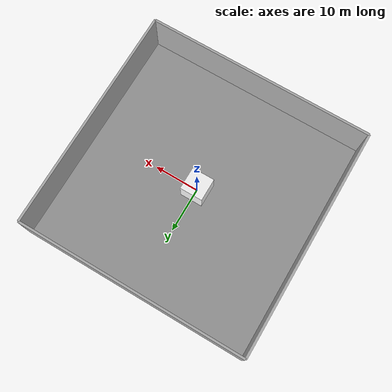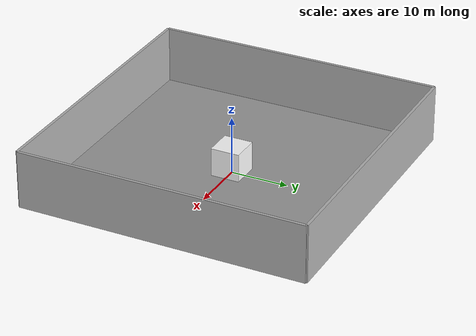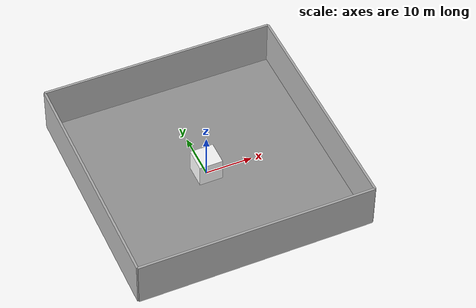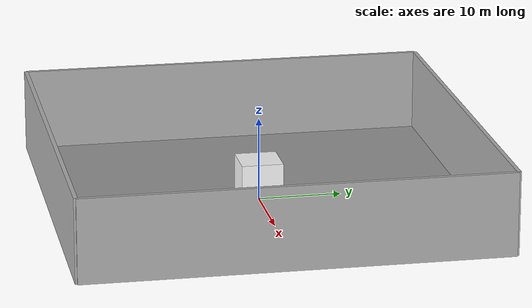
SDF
<?xml version="1.0" ?>
<sdf version="1.6">
  <world name="large_square_room">
    <physics type="ode">
      <gravity>0.000000 0.000000 -9.810000</gravity>
      <ode>
        <solver>
          <type>quick</type>
          <iters>20</iters>
          <sor>1.000000</sor>
        </solver>
        <constraints>
          <cfm>0.000000</cfm>
          <erp>0.200000</erp>
          <contact_max_correcting_vel>100.000000</contact_max_correcting_vel>
          <contact_surface_layer>0.000000</contact_surface_layer>
        </constraints>
      </ode>
      <real_time_update_rate>1000.000000</real_time_update_rate>
      <max_step_size>0.001000</max_step_size>
      <real_time_factor>1.000000</real_time_factor>
      <max_contacts>20</max_contacts>
    </physics>
    <plugin name="gz::sim::systems::Physics" filename="gz-sim-physics-system" />
    <plugin name="gz::sim::systems::UserCommands" filename="gz-sim-user-commands-system" />
    <plugin name="gz::sim::systems::SceneBroadcaster" filename="gz-sim-scene-broadcaster-system" />
    <plugin name="gz::sim::systems::Contact" filename="gz-sim-contact-system" />
    <plugin name="gz::sim::systems::Imu" filename="gz-sim-imu-system" />
    <plugin name="gz::sim::systems::AirPressure" filename="gz-sim-air-pressure-system" />
    <plugin name="gz::sim::systems::AirSpeed" filename="gz-sim-air-speed-system" />
    <plugin name="gz::sim::systems::ApplyLinkWrench" filename="gz-sim-apply-link-wrench-system" />
    <plugin name="gz::sim::systems::NavSat" filename="gz-sim-navsat-system" />
    <plugin name="gz::sim::systems::Sensors" filename="gz-sim-sensors-system" />

    <spherical_coordinates>
      <surface_model>EARTH_WGS84</surface_model>
      <world_frame_orientation>ENU</world_frame_orientation>
      <latitude_deg>46.06712712661159</latitude_deg>
      <longitude_deg> 11.149827878411065</longitude_deg>
      <elevation>0</elevation>
    </spherical_coordinates>

    <scene>
      <ambient>0.4 0.4 0.4 1</ambient>
      <background>0.1 0.1 0.1 1</background>
      <grid>false</grid>
      <origin_visual>false</origin_visual>
    </scene>

    <light name="sun" type="directional">
      <cast_shadows>1</cast_shadows>
      <pose>0.000000 0.000000 10.000000 0.000000 0.000000 0.000000</pose>
      <diffuse>0.800000 0.800000 0.800000 1.000000</diffuse>
      <specular>0.200000 0.200000 0.200000 1.000000</specular>
      <attenuation>
        <range>1000.000000</range>
        <constant>0.900000</constant>
        <linear>0.010000</linear>
        <quadratic>0.001000</quadratic>
      </attenuation>
      <visualize>false</visualize>
      <direction>0.500000 0.100000 -0.900000</direction>
    </light>

    <!-- Room: 50m x 50m floor, 10m high untextured walls -->
    <model name="room">
      <static>true</static>

      <!-- Floor -->
      <link name="floor">
        <pose>0 0 0 0 0 0</pose>
        <collision name="floor_collision">
          <geometry><box><size>50 50 0.1</size></box></geometry>
        </collision>
        <visual name="floor_visual">
          <geometry><box><size>50 50 0.1</size></box></geometry>
          <material>
            <!-- untextured gray -->
            <ambient>0.6 0.6 0.6 1</ambient>
            <diffuse>0.6 0.6 0.6 1</diffuse>
            <specular>0 0 0 1</specular>
            <emissive>0 0 0 1</emissive>
          </material>
        </visual>
      </link>

      <!-- North wall -->
      <link name="wall_north">
        <pose>0 25 5 0 0 0</pose>
        <collision name="col">
          <geometry><box><size>50 0.5 10</size></box></geometry>
        </collision>
        <visual name="vis">
          <geometry><box><size>50 0.5 10</size></box></geometry>
          <material>
            <ambient>0.7 0.7 0.7 1</ambient>
            <diffuse>0.7 0.7 0.7 1</diffuse>
            <specular>0 0 0 1</specular>
            <emissive>0 0 0 1</emissive>
          </material>
        </visual>
      </link>

      <!-- South wall -->
      <link name="wall_south">
        <pose>0 -25 5 0 0 0</pose>
        <collision name="col">
          <geometry><box><size>50 0.5 10</size></box></geometry>
        </collision>
        <visual name="vis">
          <geometry><box><size>50 0.5 10</size></box></geometry>
          <material>
            <ambient>0.7 0.7 0.7 1</ambient>
            <diffuse>0.7 0.7 0.7 1</diffuse>
            <specular>0 0 0 1</specular>
            <emissive>0 0 0 1</emissive>
          </material>
        </visual>
      </link>

      <!-- East wall -->
      <link name="wall_east">
        <pose>25 0 5 0 0 0</pose>
        <collision name="col">
          <geometry><box><size>0.5 50 10</size></box></geometry>
        </collision>
        <visual name="vis">
          <geometry><box><size>0.5 50 10</size></box></geometry>
          <material>
            <ambient>0.7 0.7 0.7 1</ambient>
            <diffuse>0.7 0.7 0.7 1</diffuse>
            <specular>0 0 0 1</specular>
            <emissive>0 0 0 1</emissive>
          </material>
        </visual>
      </link>

      <!-- West wall -->
      <link name="wall_west">
        <pose>-25 0 5 0 0 0</pose>
        <collision name="col">
          <geometry><box><size>0.5 50 10</size></box></geometry>
        </collision>
        <visual name="visual">
          <geometry><box><size>0.5 50 10</size></box></geometry>
          <material>
            <ambient>0.7 0.7 0.7 1</ambient>
            <diffuse>0.7 0.7 0.7 1</diffuse>
            <specular>0 0 0 1</specular>
            <emissive>0 0 0 1</emissive>
          </material>
        </visual>
      </link>
    </model>

    <!-- Textured obstacle: 1m cube with heavy texture -->
    <model name="obstacle_textured">
      <static>true</static>
      <pose>0 0 2.5 0 0 0</pose>
      <link name="link">
        <collision name="collision">
          <geometry><box><size>5 5 5</size></box></geometry>
        </collision>
        <visual name="visual">
            <geometry><box><size>5 5 5</size></box></geometry>
            <material>
                <double_sided>true</double_sided>
                <diffuse>1.0 1.0 1.0</diffuse>
                <script>
                    <uri>file://materials/scripts</uri>
                    <uri>file://materials/textures</uri>
                    <name>checker/Squares</name>
                </script>
                <pbr>
                    <metal>
                        <albedo_map>file://materials/textures/checker.png</albedo_map>
                    </metal>
                </pbr>
            </material>
        </visual>
      </link>
    </model>

    <!-- Untextured obstacle: 1m cube with flat color -->

    <gui>
      <camera name="user_camera">
        <pose>0 -20 8 0.3 0.3 0</pose>
      </camera>
    </gui>
  </world>
</sdf>
